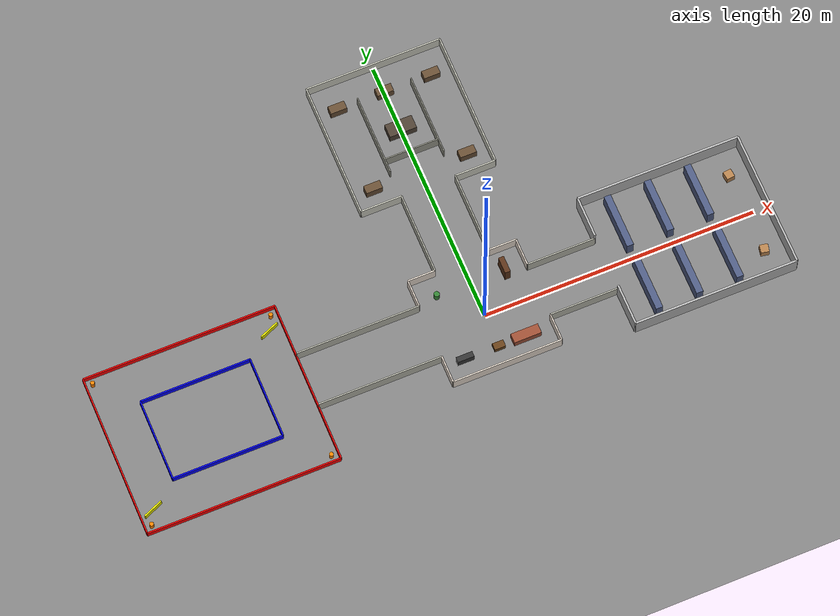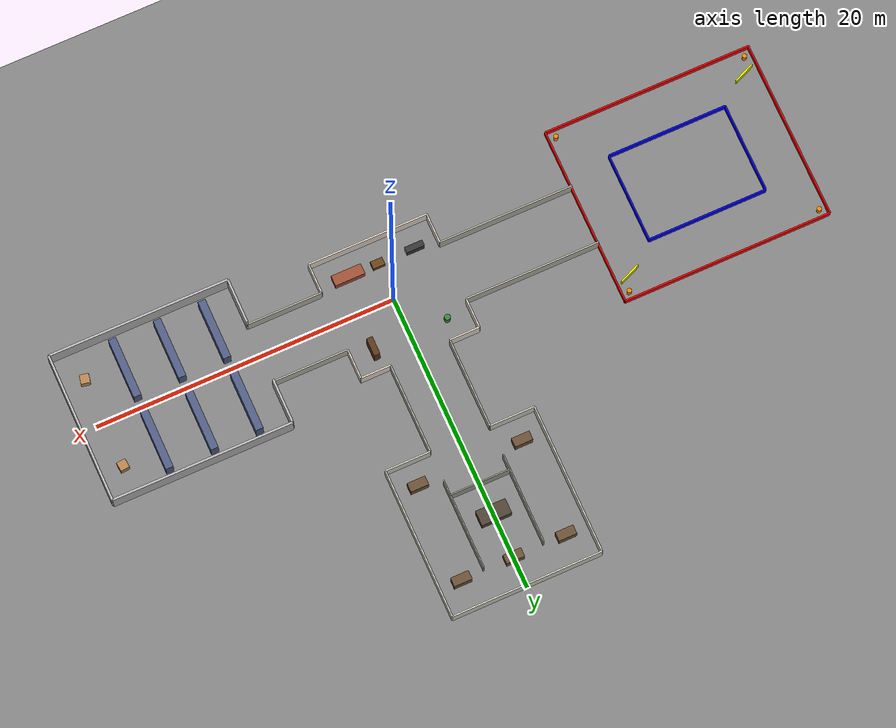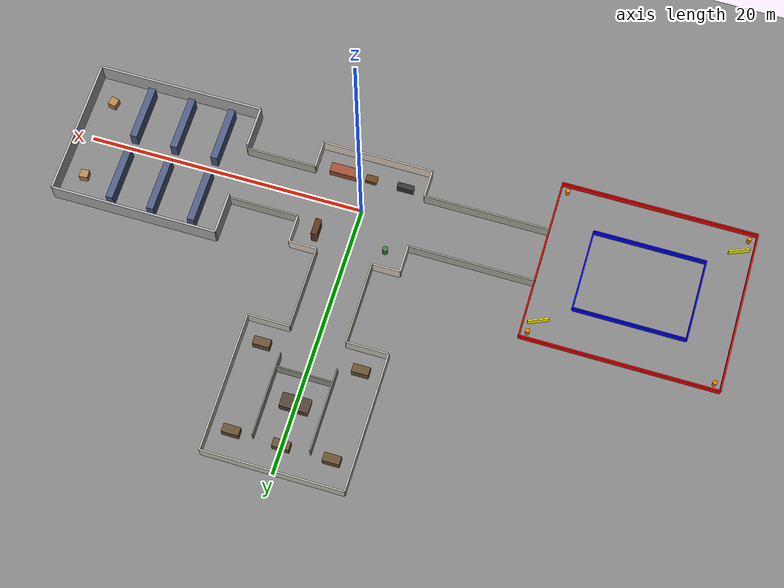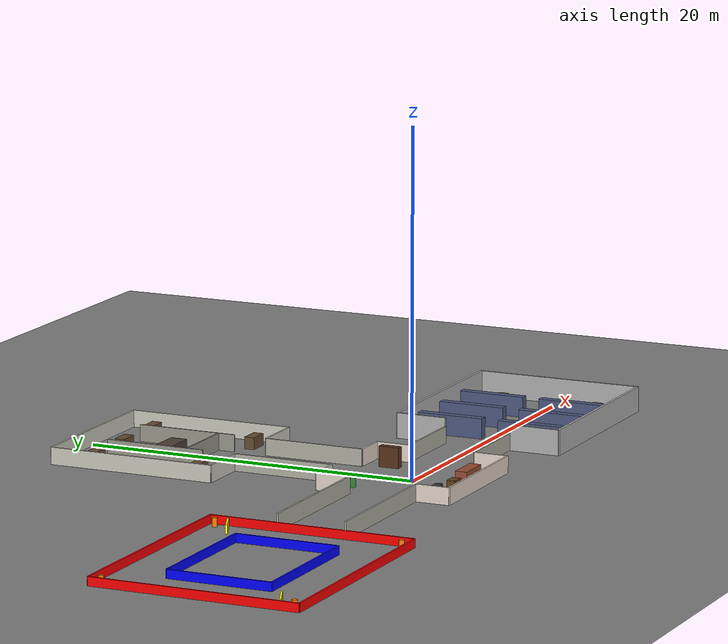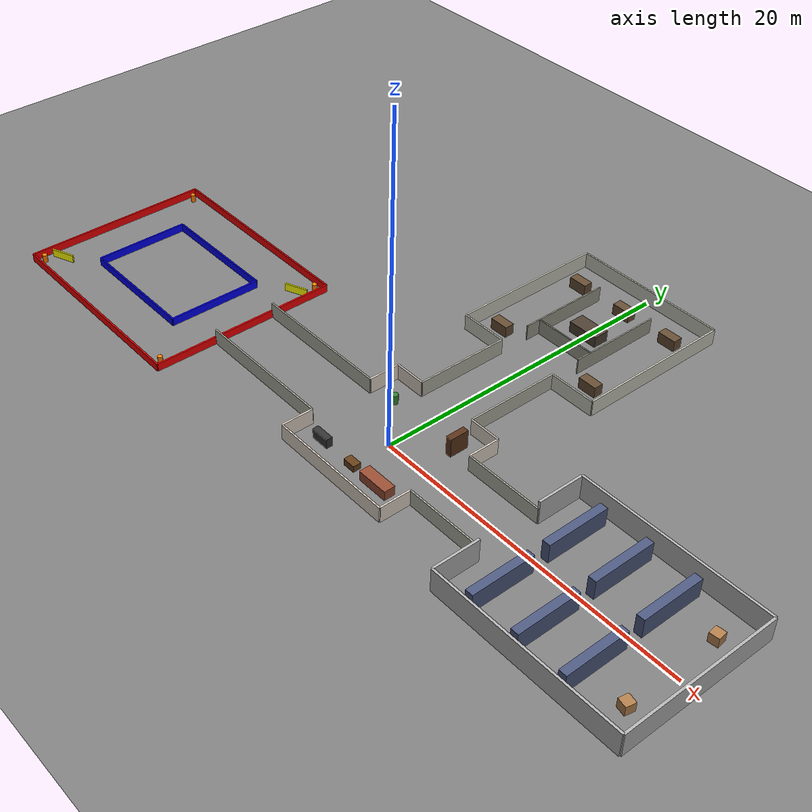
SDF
<?xml version="1.0" ?>
<sdf version="1.8">
  <world name="full_world">

    <!-- Physics -->
    <physics name="1ms" type="ignored">
      <max_step_size>0.001</max_step_size>
      <real_time_factor>1.0</real_time_factor>
    </physics>

    <!-- Plugins -->
    <plugin filename="gz-sim-physics-system" name="gz::sim::systems::Physics"/>
    <plugin filename="gz-sim-user-commands-system" name="gz::sim::systems::UserCommands"/>
    <plugin filename="gz-sim-scene-broadcaster-system" name="gz::sim::systems::SceneBroadcaster"/>
    <plugin filename="gz-sim-sensors-system" name="gz::sim::systems::Sensors">
      <render_engine>ogre2</render_engine>
    </plugin>
    <plugin filename="gz-sim-imu-system" name="gz::sim::systems::Imu"/>
    <plugin filename="gz-sim-contact-system" name="gz::sim::systems::Contact"/>

    <!-- Lighting -->
    <light type="directional" name="sun">
      <cast_shadows>true</cast_shadows>
      <pose>0 0 20 0 0 0</pose>
      <diffuse>0.9 0.9 0.9 1</diffuse>
      <specular>0.3 0.3 0.3 1</specular>
      <direction>-0.5 0.1 -0.9</direction>
    </light>

    <!-- Ground -->
    <model name="ground_plane">
      <static>true</static>
      <link name="link">
        <collision name="collision">
          <geometry>
            <plane>
              <normal>0 0 1</normal>
              <size>200 200</size>
            </plane>
          </geometry>
        </collision>
        <visual name="visual">
          <geometry>
            <plane>
              <normal>0 0 1</normal>
              <size>200 200</size>
            </plane>
          </geometry>
          <material>
            <ambient>0.5 0.5 0.5 1</ambient>
            <diffuse>0.5 0.5 0.5 1</diffuse>
          </material>
        </visual>
      </link>
    </model>

    <!-- 구역 1: 거실 (중앙, 0, 0) -->

    <!-- 거실 외벽 -->
    <!-- 북쪽 벽 - 사무실 통로용 출입구 (폭 4m 열림, x=-2 ~ x=2) -->
    <model name="room_wall_n1">
      <static>true</static>
      <pose>-3 4 0.5 0 0 0</pose>
      <link name="link">
        <collision name="collision"><geometry><box><size>2 0.1 1</size></box></geometry></collision>
        <visual name="visual"><geometry><box><size>2 0.1 1</size></box></geometry>
          <material><ambient>0.9 0.85 0.8 1</ambient><diffuse>0.9 0.85 0.8 1</diffuse></material>
        </visual>
      </link>
    </model>
    <model name="room_wall_n2">
      <static>true</static>
      <pose>3 4 0.5 0 0 0</pose>
      <link name="link">
        <collision name="collision"><geometry><box><size>2 0.1 1</size></box></geometry></collision>
        <visual name="visual"><geometry><box><size>2 0.1 1</size></box></geometry>
          <material><ambient>0.9 0.85 0.8 1</ambient><diffuse>0.9 0.85 0.8 1</diffuse></material>
        </visual>
      </link>
    </model>
    <model name="room_wall_s">
      <static>true</static>
      <pose>0 -4 0.5 0 0 0</pose>
      <link name="link">
        <collision name="collision"><geometry><box><size>8 0.1 1</size></box></geometry></collision>
        <visual name="visual"><geometry><box><size>8 0.1 1</size></box></geometry>
          <material><ambient>0.9 0.85 0.8 1</ambient><diffuse>0.9 0.85 0.8 1</diffuse></material>
        </visual>
      </link>
    </model>
    <!-- 동쪽 벽 - 창고 통로용 출입구 (폭 4m 열림, y=-2 ~ y=2) -->
    <model name="room_wall_e1">
      <static>true</static>
      <pose>4 3 0.5 0 0 0</pose>
      <link name="link">
        <collision name="collision"><geometry><box><size>0.1 2 1</size></box></geometry></collision>
        <visual name="visual"><geometry><box><size>0.1 2 1</size></box></geometry>
          <material><ambient>0.9 0.85 0.8 1</ambient><diffuse>0.9 0.85 0.8 1</diffuse></material>
        </visual>
      </link>
    </model>
    <model name="room_wall_e2">
      <static>true</static>
      <pose>4 -3 0.5 0 0 0</pose>
      <link name="link">
        <collision name="collision"><geometry><box><size>0.1 2 1</size></box></geometry></collision>
        <visual name="visual"><geometry><box><size>0.1 2 1</size></box></geometry>
          <material><ambient>0.9 0.85 0.8 1</ambient><diffuse>0.9 0.85 0.8 1</diffuse></material>
        </visual>
      </link>
    </model>
    <!-- 서쪽 벽 - 트랙 통로용 출입구 (폭 4m 열림, y=-2 ~ y=2) -->
    <model name="room_wall_w1">
      <static>true</static>
      <pose>-4 3 0.5 0 0 0</pose>
      <link name="link">
        <collision name="collision"><geometry><box><size>0.1 2 1</size></box></geometry></collision>
        <visual name="visual"><geometry><box><size>0.1 2 1</size></box></geometry>
          <material><ambient>0.9 0.85 0.8 1</ambient><diffuse>0.9 0.85 0.8 1</diffuse></material>
        </visual>
      </link>
    </model>
    <model name="room_wall_w2">
      <static>true</static>
      <pose>-4 -3 0.5 0 0 0</pose>
      <link name="link">
        <collision name="collision"><geometry><box><size>0.1 2 1</size></box></geometry></collision>
        <visual name="visual"><geometry><box><size>0.1 2 1</size></box></geometry>
          <material><ambient>0.9 0.85 0.8 1</ambient><diffuse>0.9 0.85 0.8 1</diffuse></material>
        </visual>
      </link>
    </model>

    <!-- 거실 가구 (간격 넓힘) -->
    <model name="sofa">
      <static>true</static>
      <pose>2.0 -2.5 0.3 0 0 0</pose>
      <link name="link">
        <collision name="collision"><geometry><box><size>2 0.7 0.6</size></box></geometry></collision>
        <visual name="visual"><geometry><box><size>2 0.7 0.6</size></box></geometry>
          <material><ambient>0.6 0.3 0.2 1</ambient><diffuse>0.6 0.3 0.2 1</diffuse></material>
        </visual>
      </link>
    </model>
    <model name="coffee_table">
      <static>true</static>
      <pose>0 -2.5 0.2 0 0 0</pose>
      <link name="link">
        <collision name="collision"><geometry><box><size>0.8 0.5 0.4</size></box></geometry></collision>
        <visual name="visual"><geometry><box><size>0.8 0.5 0.4</size></box></geometry>
          <material><ambient>0.4 0.25 0.1 1</ambient><diffuse>0.4 0.25 0.1 1</diffuse></material>
        </visual>
      </link>
    </model>
    <model name="tv_stand">
      <static>true</static>
      <pose>-2.5 -2.5 0.3 0 0 0</pose>
      <link name="link">
        <collision name="collision"><geometry><box><size>1.2 0.4 0.6</size></box></geometry></collision>
        <visual name="visual"><geometry><box><size>1.2 0.4 0.6</size></box></geometry>
          <material><ambient>0.2 0.2 0.2 1</ambient><diffuse>0.2 0.2 0.2 1</diffuse></material>
        </visual>
      </link>
    </model>
    <model name="bookshelf">
      <static>true</static>
      <pose>2.5 2.5 0.6 0 0 0</pose>
      <link name="link">
        <collision name="collision"><geometry><box><size>0.4 1.2 1.2</size></box></geometry></collision>
        <visual name="visual"><geometry><box><size>0.4 1.2 1.2</size></box></geometry>
          <material><ambient>0.35 0.2 0.1 1</ambient><diffuse>0.35 0.2 0.1 1</diffuse></material>
        </visual>
      </link>
    </model>
    <model name="plant1">
      <static>true</static>
      <pose>-2.5 2.5 0.3 0 0 0</pose>
      <link name="link">
        <collision name="collision"><geometry><cylinder><radius>0.2</radius><length>0.6</length></cylinder></geometry></collision>
        <visual name="visual"><geometry><cylinder><radius>0.2</radius><length>0.6</length></cylinder></geometry>
          <material><ambient>0.2 0.5 0.2 1</ambient><diffuse>0.2 0.5 0.2 1</diffuse></material>
        </visual>
      </link>
    </model>

    <!-- 구역 2: 창고 (오른쪽, 15, 0) -->

    <!-- 창고 외벽 -->
    <model name="wh_wall_n">
      <static>true</static>
      <pose>15 5 0.75 0 0 0</pose>
      <link name="link">
        <collision name="collision"><geometry><box><size>12 0.15 1.5</size></box></geometry></collision>
        <visual name="visual"><geometry><box><size>12 0.15 1.5</size></box></geometry>
          <material><ambient>0.7 0.7 0.7 1</ambient><diffuse>0.7 0.7 0.7 1</diffuse></material>
        </visual>
      </link>
    </model>
    <model name="wh_wall_s">
      <static>true</static>
      <pose>15 -5 0.75 0 0 0</pose>
      <link name="link">
        <collision name="collision"><geometry><box><size>12 0.15 1.5</size></box></geometry></collision>
        <visual name="visual"><geometry><box><size>12 0.15 1.5</size></box></geometry>
          <material><ambient>0.7 0.7 0.7 1</ambient><diffuse>0.7 0.7 0.7 1</diffuse></material>
        </visual>
      </link>
    </model>
    <model name="wh_wall_e">
      <static>true</static>
      <pose>21 0 0.75 0 0 0</pose>
      <link name="link">
        <collision name="collision"><geometry><box><size>0.15 10 1.5</size></box></geometry></collision>
        <visual name="visual"><geometry><box><size>0.15 10 1.5</size></box></geometry>
          <material><ambient>0.7 0.7 0.7 1</ambient><diffuse>0.7 0.7 0.7 1</diffuse></material>
        </visual>
      </link>
    </model>
    <!-- 창고 서쪽 벽 - 통로 입구 4m 열림 (y=-2 ~ y=2) -->
    <model name="wh_wall_w1">
      <static>true</static>
      <pose>9 3.5 0.75 0 0 0</pose>
      <link name="link">
        <collision name="collision"><geometry><box><size>0.15 3 1.5</size></box></geometry></collision>
        <visual name="visual"><geometry><box><size>0.15 3 1.5</size></box></geometry>
          <material><ambient>0.7 0.7 0.7 1</ambient><diffuse>0.7 0.7 0.7 1</diffuse></material>
        </visual>
      </link>
    </model>
    <model name="wh_wall_w2">
      <static>true</static>
      <pose>9 -3.5 0.75 0 0 0</pose>
      <link name="link">
        <collision name="collision"><geometry><box><size>0.15 3 1.5</size></box></geometry></collision>
        <visual name="visual"><geometry><box><size>0.15 3 1.5</size></box></geometry>
          <material><ambient>0.7 0.7 0.7 1</ambient><diffuse>0.7 0.7 0.7 1</diffuse></material>
        </visual>
      </link>
    </model>

    <!-- 창고 선반들 -->
    <model name="shelf_a1">
      <static>true</static>
      <pose>11 2.5 0.6 0 0 0</pose>
      <link name="link">
        <collision name="collision"><geometry><box><size>0.5 4 1.2</size></box></geometry></collision>
        <visual name="visual"><geometry><box><size>0.5 4 1.2</size></box></geometry>
          <material><ambient>0.3 0.35 0.5 1</ambient><diffuse>0.3 0.35 0.5 1</diffuse></material>
        </visual>
      </link>
    </model>
    <model name="shelf_a2">
      <static>true</static>
      <pose>14 2.5 0.6 0 0 0</pose>
      <link name="link">
        <collision name="collision"><geometry><box><size>0.5 4 1.2</size></box></geometry></collision>
        <visual name="visual"><geometry><box><size>0.5 4 1.2</size></box></geometry>
          <material><ambient>0.3 0.35 0.5 1</ambient><diffuse>0.3 0.35 0.5 1</diffuse></material>
        </visual>
      </link>
    </model>
    <model name="shelf_a3">
      <static>true</static>
      <pose>17 2.5 0.6 0 0 0</pose>
      <link name="link">
        <collision name="collision"><geometry><box><size>0.5 4 1.2</size></box></geometry></collision>
        <visual name="visual"><geometry><box><size>0.5 4 1.2</size></box></geometry>
          <material><ambient>0.3 0.35 0.5 1</ambient><diffuse>0.3 0.35 0.5 1</diffuse></material>
        </visual>
      </link>
    </model>
    <model name="shelf_b1">
      <static>true</static>
      <pose>11 -2.5 0.6 0 0 0</pose>
      <link name="link">
        <collision name="collision"><geometry><box><size>0.5 4 1.2</size></box></geometry></collision>
        <visual name="visual"><geometry><box><size>0.5 4 1.2</size></box></geometry>
          <material><ambient>0.3 0.35 0.5 1</ambient><diffuse>0.3 0.35 0.5 1</diffuse></material>
        </visual>
      </link>
    </model>
    <model name="shelf_b2">
      <static>true</static>
      <pose>14 -2.5 0.6 0 0 0</pose>
      <link name="link">
        <collision name="collision"><geometry><box><size>0.5 4 1.2</size></box></geometry></collision>
        <visual name="visual"><geometry><box><size>0.5 4 1.2</size></box></geometry>
          <material><ambient>0.3 0.35 0.5 1</ambient><diffuse>0.3 0.35 0.5 1</diffuse></material>
        </visual>
      </link>
    </model>
    <model name="shelf_b3">
      <static>true</static>
      <pose>17 -2.5 0.6 0 0 0</pose>
      <link name="link">
        <collision name="collision"><geometry><box><size>0.5 4 1.2</size></box></geometry></collision>
        <visual name="visual"><geometry><box><size>0.5 4 1.2</size></box></geometry>
          <material><ambient>0.3 0.35 0.5 1</ambient><diffuse>0.3 0.35 0.5 1</diffuse></material>
        </visual>
      </link>
    </model>

    <!-- 창고 박스들 -->
    <model name="wh_box1">
      <static>true</static>
      <pose>19.5 3 0.3 0 0 0.1</pose>
      <link name="link">
        <collision name="collision"><geometry><box><size>0.6 0.6 0.6</size></box></geometry></collision>
        <visual name="visual"><geometry><box><size>0.6 0.6 0.6</size></box></geometry>
          <material><ambient>0.7 0.5 0.3 1</ambient><diffuse>0.7 0.5 0.3 1</diffuse></material>
        </visual>
      </link>
    </model>
    <model name="wh_box2">
      <static>true</static>
      <pose>19.5 -3 0.3 0 0 -0.2</pose>
      <link name="link">
        <collision name="collision"><geometry><box><size>0.6 0.6 0.6</size></box></geometry></collision>
        <visual name="visual"><geometry><box><size>0.6 0.6 0.6</size></box></geometry>
          <material><ambient>0.7 0.5 0.3 1</ambient><diffuse>0.7 0.5 0.3 1</diffuse></material>
        </visual>
      </link>
    </model>

    <!-- 구역 3: 사무실 (위쪽, 0, 15) -->

    <!-- 사무실 외벽 -->
    <model name="off_wall_n">
      <static>true</static>
      <pose>0 20 0.5 0 0 0</pose>
      <link name="link">
        <collision name="collision"><geometry><box><size>10 0.1 1</size></box></geometry></collision>
        <visual name="visual"><geometry><box><size>10 0.1 1</size></box></geometry>
          <material><ambient>0.8 0.8 0.75 1</ambient><diffuse>0.8 0.8 0.75 1</diffuse></material>
        </visual>
      </link>
    </model>
    <!-- 사무실 남쪽 벽 - 통로 입구 4m 열림 (x=-2 ~ x=2) -->
    <model name="off_wall_s1">
      <static>true</static>
      <pose>-3.5 10 0.5 0 0 0</pose>
      <link name="link">
        <collision name="collision"><geometry><box><size>3 0.1 1</size></box></geometry></collision>
        <visual name="visual"><geometry><box><size>3 0.1 1</size></box></geometry>
          <material><ambient>0.8 0.8 0.75 1</ambient><diffuse>0.8 0.8 0.75 1</diffuse></material>
        </visual>
      </link>
    </model>
    <model name="off_wall_s2">
      <static>true</static>
      <pose>3.5 10 0.5 0 0 0</pose>
      <link name="link">
        <collision name="collision"><geometry><box><size>3 0.1 1</size></box></geometry></collision>
        <visual name="visual"><geometry><box><size>3 0.1 1</size></box></geometry>
          <material><ambient>0.8 0.8 0.75 1</ambient><diffuse>0.8 0.8 0.75 1</diffuse></material>
        </visual>
      </link>
    </model>
    <model name="off_wall_e">
      <static>true</static>
      <pose>5 15 0.5 0 0 0</pose>
      <link name="link">
        <collision name="collision"><geometry><box><size>0.1 10 1</size></box></geometry></collision>
        <visual name="visual"><geometry><box><size>0.1 10 1</size></box></geometry>
          <material><ambient>0.8 0.8 0.75 1</ambient><diffuse>0.8 0.8 0.75 1</diffuse></material>
        </visual>
      </link>
    </model>
    <model name="off_wall_w">
      <static>true</static>
      <pose>-5 15 0.5 0 0 0</pose>
      <link name="link">
        <collision name="collision"><geometry><box><size>0.1 10 1</size></box></geometry></collision>
        <visual name="visual"><geometry><box><size>0.1 10 1</size></box></geometry>
          <material><ambient>0.8 0.8 0.75 1</ambient><diffuse>0.8 0.8 0.75 1</diffuse></material>
        </visual>
      </link>
    </model>

    <!-- 사무실 파티션 -->
    <model name="off_part1">
      <static>true</static>
      <pose>-2 15 0.5 0 0 0</pose>
      <link name="link">
        <collision name="collision"><geometry><box><size>0.08 6 1</size></box></geometry></collision>
        <visual name="visual"><geometry><box><size>0.08 6 1</size></box></geometry>
          <material><ambient>0.6 0.6 0.55 1</ambient><diffuse>0.6 0.6 0.55 1</diffuse></material>
        </visual>
      </link>
    </model>
    <model name="off_part2">
      <static>true</static>
      <pose>2 15 0.5 0 0 0</pose>
      <link name="link">
        <collision name="collision"><geometry><box><size>0.08 6 1</size></box></geometry></collision>
        <visual name="visual"><geometry><box><size>0.08 6 1</size></box></geometry>
          <material><ambient>0.6 0.6 0.55 1</ambient><diffuse>0.6 0.6 0.55 1</diffuse></material>
        </visual>
      </link>
    </model>
    <model name="off_part3">
      <static>true</static>
      <pose>0 13 0.5 0 0 0</pose>
      <link name="link">
        <collision name="collision"><geometry><box><size>4 0.08 1</size></box></geometry></collision>
        <visual name="visual"><geometry><box><size>4 0.08 1</size></box></geometry>
          <material><ambient>0.6 0.6 0.55 1</ambient><diffuse>0.6 0.6 0.55 1</diffuse></material>
        </visual>
      </link>
    </model>

    <!-- 사무실 책상들 -->
    <model name="off_desk1">
      <static>true</static>
      <pose>-3.5 18 0.35 0 0 0</pose>
      <link name="link">
        <collision name="collision"><geometry><box><size>1.2 0.6 0.7</size></box></geometry></collision>
        <visual name="visual"><geometry><box><size>1.2 0.6 0.7</size></box></geometry>
          <material><ambient>0.4 0.3 0.2 1</ambient><diffuse>0.4 0.3 0.2 1</diffuse></material>
        </visual>
      </link>
    </model>
    <model name="off_desk2">
      <static>true</static>
      <pose>0 18 0.35 0 0 0</pose>
      <link name="link">
        <collision name="collision"><geometry><box><size>1.2 0.6 0.7</size></box></geometry></collision>
        <visual name="visual"><geometry><box><size>1.2 0.6 0.7</size></box></geometry>
          <material><ambient>0.4 0.3 0.2 1</ambient><diffuse>0.4 0.3 0.2 1</diffuse></material>
        </visual>
      </link>
    </model>
    <model name="off_desk3">
      <static>true</static>
      <pose>3.5 18 0.35 0 0 0</pose>
      <link name="link">
        <collision name="collision"><geometry><box><size>1.2 0.6 0.7</size></box></geometry></collision>
        <visual name="visual"><geometry><box><size>1.2 0.6 0.7</size></box></geometry>
          <material><ambient>0.4 0.3 0.2 1</ambient><diffuse>0.4 0.3 0.2 1</diffuse></material>
        </visual>
      </link>
    </model>
    <model name="off_desk4">
      <static>true</static>
      <pose>-3.5 11.5 0.35 0 0 0</pose>
      <link name="link">
        <collision name="collision"><geometry><box><size>1.2 0.6 0.7</size></box></geometry></collision>
        <visual name="visual"><geometry><box><size>1.2 0.6 0.7</size></box></geometry>
          <material><ambient>0.4 0.3 0.2 1</ambient><diffuse>0.4 0.3 0.2 1</diffuse></material>
        </visual>
      </link>
    </model>
    <model name="off_desk5">
      <static>true</static>
      <pose>3.5 11.5 0.35 0 0 0</pose>
      <link name="link">
        <collision name="collision"><geometry><box><size>1.2 0.6 0.7</size></box></geometry></collision>
        <visual name="visual"><geometry><box><size>1.2 0.6 0.7</size></box></geometry>
          <material><ambient>0.4 0.3 0.2 1</ambient><diffuse>0.4 0.3 0.2 1</diffuse></material>
        </visual>
      </link>
    </model>

    <!-- 회의 테이블 -->
    <model name="meeting_table">
      <static>true</static>
      <pose>0 15 0.35 0 0 0</pose>
      <link name="link">
        <collision name="collision"><geometry><box><size>2 1 0.7</size></box></geometry></collision>
        <visual name="visual"><geometry><box><size>2 1 0.7</size></box></geometry>
          <material><ambient>0.3 0.25 0.2 1</ambient><diffuse>0.3 0.25 0.2 1</diffuse></material>
        </visual>
      </link>
    </model>

    <!-- 구역 4: 트랙 (왼쪽, -20, 0) -->

    <!-- 트랙 외곽 -->
    <model name="track_outer_n">
      <static>true</static>
      <pose>-20 6 0.25 0 0 0</pose>
      <link name="link">
        <collision name="collision"><geometry><box><size>14 0.1 0.5</size></box></geometry></collision>
        <visual name="visual"><geometry><box><size>14 0.1 0.5</size></box></geometry>
          <material><ambient>1 0 0 1</ambient><diffuse>1 0 0 1</diffuse></material>
        </visual>
      </link>
    </model>
    <model name="track_outer_s">
      <static>true</static>
      <pose>-20 -6 0.25 0 0 0</pose>
      <link name="link">
        <collision name="collision"><geometry><box><size>14 0.1 0.5</size></box></geometry></collision>
        <visual name="visual"><geometry><box><size>14 0.1 0.5</size></box></geometry>
          <material><ambient>1 0 0 1</ambient><diffuse>1 0 0 1</diffuse></material>
        </visual>
      </link>
    </model>
    <model name="track_outer_e">
      <static>true</static>
      <pose>-13 0 0.25 0 0 0</pose>
      <link name="link">
        <collision name="collision"><geometry><box><size>0.1 12 0.5</size></box></geometry></collision>
        <visual name="visual"><geometry><box><size>0.1 12 0.5</size></box></geometry>
          <material><ambient>1 0 0 1</ambient><diffuse>1 0 0 1</diffuse></material>
        </visual>
      </link>
    </model>
    <model name="track_outer_w">
      <static>true</static>
      <pose>-27 0 0.25 0 0 0</pose>
      <link name="link">
        <collision name="collision"><geometry><box><size>0.1 12 0.5</size></box></geometry></collision>
        <visual name="visual"><geometry><box><size>0.1 12 0.5</size></box></geometry>
          <material><ambient>1 0 0 1</ambient><diffuse>1 0 0 1</diffuse></material>
        </visual>
      </link>
    </model>

    <!-- 트랙 내부 섬 -->
    <model name="track_inner_n">
      <static>true</static>
      <pose>-20 3 0.25 0 0 0</pose>
      <link name="link">
        <collision name="collision"><geometry><box><size>8 0.1 0.5</size></box></geometry></collision>
        <visual name="visual"><geometry><box><size>8 0.1 0.5</size></box></geometry>
          <material><ambient>0 0 1 1</ambient><diffuse>0 0 1 1</diffuse></material>
        </visual>
      </link>
    </model>
    <model name="track_inner_s">
      <static>true</static>
      <pose>-20 -3 0.25 0 0 0</pose>
      <link name="link">
        <collision name="collision"><geometry><box><size>8 0.1 0.5</size></box></geometry></collision>
        <visual name="visual"><geometry><box><size>8 0.1 0.5</size></box></geometry>
          <material><ambient>0 0 1 1</ambient><diffuse>0 0 1 1</diffuse></material>
        </visual>
      </link>
    </model>
    <model name="track_inner_e">
      <static>true</static>
      <pose>-16 0 0.25 0 0 0</pose>
      <link name="link">
        <collision name="collision"><geometry><box><size>0.1 6 0.5</size></box></geometry></collision>
        <visual name="visual"><geometry><box><size>0.1 6 0.5</size></box></geometry>
          <material><ambient>0 0 1 1</ambient><diffuse>0 0 1 1</diffuse></material>
        </visual>
      </link>
    </model>
    <model name="track_inner_w">
      <static>true</static>
      <pose>-24 0 0.25 0 0 0</pose>
      <link name="link">
        <collision name="collision"><geometry><box><size>0.1 6 0.5</size></box></geometry></collision>
        <visual name="visual"><geometry><box><size>0.1 6 0.5</size></box></geometry>
          <material><ambient>0 0 1 1</ambient><diffuse>0 0 1 1</diffuse></material>
        </visual>
      </link>
    </model>

    <!-- 시케인 -->
    <model name="chicane1">
      <static>true</static>
      <pose>-14 4.5 0.25 0 0 0.4</pose>
      <link name="link">
        <collision name="collision"><geometry><box><size>1.5 0.1 0.5</size></box></geometry></collision>
        <visual name="visual"><geometry><box><size>1.5 0.1 0.5</size></box></geometry>
          <material><ambient>1 1 0 1</ambient><diffuse>1 1 0 1</diffuse></material>
        </visual>
      </link>
    </model>
    <model name="chicane2">
      <static>true</static>
      <pose>-26 -4.5 0.25 0 0 0.4</pose>
      <link name="link">
        <collision name="collision"><geometry><box><size>1.5 0.1 0.5</size></box></geometry></collision>
        <visual name="visual"><geometry><box><size>1.5 0.1 0.5</size></box></geometry>
          <material><ambient>1 1 0 1</ambient><diffuse>1 1 0 1</diffuse></material>
        </visual>
      </link>
    </model>

    <!-- 코너 마커 -->
    <model name="marker1">
      <static>true</static>
      <pose>-13.5 5.5 0.25 0 0 0</pose>
      <link name="link">
        <collision name="collision"><geometry><cylinder><radius>0.15</radius><length>0.5</length></cylinder></geometry></collision>
        <visual name="visual"><geometry><cylinder><radius>0.15</radius><length>0.5</length></cylinder></geometry>
          <material><ambient>1 0.5 0 1</ambient><diffuse>1 0.5 0 1</diffuse></material>
        </visual>
      </link>
    </model>
    <model name="marker2">
      <static>true</static>
      <pose>-26.5 5.5 0.25 0 0 0</pose>
      <link name="link">
        <collision name="collision"><geometry><cylinder><radius>0.15</radius><length>0.5</length></cylinder></geometry></collision>
        <visual name="visual"><geometry><cylinder><radius>0.15</radius><length>0.5</length></cylinder></geometry>
          <material><ambient>1 0.5 0 1</ambient><diffuse>1 0.5 0 1</diffuse></material>
        </visual>
      </link>
    </model>
    <model name="marker3">
      <static>true</static>
      <pose>-13.5 -5.5 0.25 0 0 0</pose>
      <link name="link">
        <collision name="collision"><geometry><cylinder><radius>0.15</radius><length>0.5</length></cylinder></geometry></collision>
        <visual name="visual"><geometry><cylinder><radius>0.15</radius><length>0.5</length></cylinder></geometry>
          <material><ambient>1 0.5 0 1</ambient><diffuse>1 0.5 0 1</diffuse></material>
        </visual>
      </link>
    </model>
    <model name="marker4">
      <static>true</static>
      <pose>-26.5 -5.5 0.25 0 0 0</pose>
      <link name="link">
        <collision name="collision"><geometry><cylinder><radius>0.15</radius><length>0.5</length></cylinder></geometry></collision>
        <visual name="visual"><geometry><cylinder><radius>0.15</radius><length>0.5</length></cylinder></geometry>
          <material><ambient>1 0.5 0 1</ambient><diffuse>1 0.5 0 1</diffuse></material>
        </visual>
      </link>
    </model>

    <!-- 구역 연결 통로 -->

    <!-- 거실 -> 창고 통로 벽 (폭 4m로 확장: y=-2 ~ y=2) -->
    <model name="corridor1_n">
      <static>true</static>
      <pose>6.5 2 0.5 0 0 0</pose>
      <link name="link">
        <collision name="collision"><geometry><box><size>5 0.1 1</size></box></geometry></collision>
        <visual name="visual"><geometry><box><size>5 0.1 1</size></box></geometry>
          <material><ambient>0.7 0.7 0.65 1</ambient><diffuse>0.7 0.7 0.65 1</diffuse></material>
        </visual>
      </link>
    </model>
    <model name="corridor1_s">
      <static>true</static>
      <pose>6.5 -2 0.5 0 0 0</pose>
      <link name="link">
        <collision name="collision"><geometry><box><size>5 0.1 1</size></box></geometry></collision>
        <visual name="visual"><geometry><box><size>5 0.1 1</size></box></geometry>
          <material><ambient>0.7 0.7 0.65 1</ambient><diffuse>0.7 0.7 0.65 1</diffuse></material>
        </visual>
      </link>
    </model>

    <!-- 거실 -> 사무실 통로 벽 (폭 4m로 확장: x=-2 ~ x=2) -->
    <model name="corridor2_e">
      <static>true</static>
      <pose>2 7 0.5 0 0 0</pose>
      <link name="link">
        <collision name="collision"><geometry><box><size>0.1 6 1</size></box></geometry></collision>
        <visual name="visual"><geometry><box><size>0.1 6 1</size></box></geometry>
          <material><ambient>0.7 0.7 0.65 1</ambient><diffuse>0.7 0.7 0.65 1</diffuse></material>
        </visual>
      </link>
    </model>
    <model name="corridor2_w">
      <static>true</static>
      <pose>-2 7 0.5 0 0 0</pose>
      <link name="link">
        <collision name="collision"><geometry><box><size>0.1 6 1</size></box></geometry></collision>
        <visual name="visual"><geometry><box><size>0.1 6 1</size></box></geometry>
          <material><ambient>0.7 0.7 0.65 1</ambient><diffuse>0.7 0.7 0.65 1</diffuse></material>
        </visual>
      </link>
    </model>

    <!-- 거실 -> 트랙 통로 벽 (폭 4m로 확장: y=-2 ~ y=2) -->
    <model name="corridor3_n">
      <static>true</static>
      <pose>-8.5 2 0.5 0 0 0</pose>
      <link name="link">
        <collision name="collision"><geometry><box><size>9 0.1 1</size></box></geometry></collision>
        <visual name="visual"><geometry><box><size>9 0.1 1</size></box></geometry>
          <material><ambient>0.7 0.7 0.65 1</ambient><diffuse>0.7 0.7 0.65 1</diffuse></material>
        </visual>
      </link>
    </model>
    <model name="corridor3_s">
      <static>true</static>
      <pose>-8.5 -2 0.5 0 0 0</pose>
      <link name="link">
        <collision name="collision"><geometry><box><size>9 0.1 1</size></box></geometry></collision>
        <visual name="visual"><geometry><box><size>9 0.1 1</size></box></geometry>
          <material><ambient>0.7 0.7 0.65 1</ambient><diffuse>0.7 0.7 0.65 1</diffuse></material>
        </visual>
      </link>
    </model>

  </world>
</sdf>
